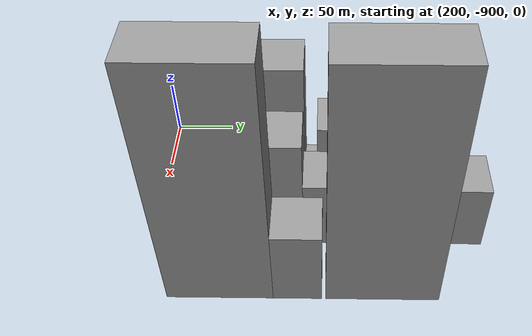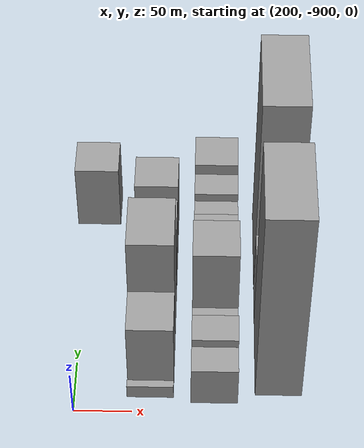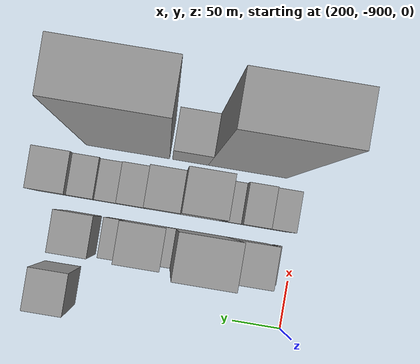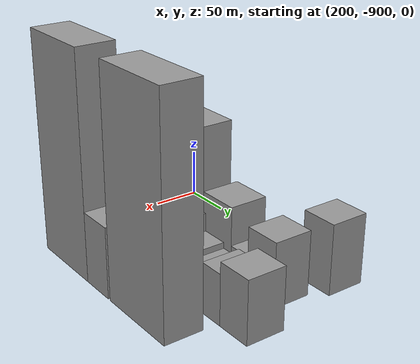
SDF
<sdf version="1.6">
 <world name="default">
  <model name="building_111">
   <static>1</static>
   <pose>210.0000 -667.3790 0 0.000000 0.000000 0.000000</pose>
   <link name="link">
    <pose>0 0 36.00 0 0 0</pose>
    <collision name="collision"><geometry><box><size>40.0000 37.5217 72.0000</size></box></geometry></collision>
    <visual name="visual">
     <cast_shadows>0</cast_shadows>
     <geometry><box><size>40.0000 37.5217 72.0000</size></box></geometry>
     <material>
      <script>
       <uri>model://grey_wall/materials/scripts</uri>
       <uri>model://grey_wall/materials/textures</uri>
       <name>vrc/grey_wall</name>
      </script>
     </material>
    </visual>
   </link>
  </model>
  <model name="building_155">
   <static>1</static>
   <pose>265.0000 -881.4780 0 0.000000 0.000000 0.000000</pose>
   <link name="link">
    <pose>0 0 7.50 0 0 0</pose>
    <collision name="collision"><geometry><box><size>40.0000 7.0440 15.0000</size></box></geometry></collision>
    <visual name="visual">
     <cast_shadows>0</cast_shadows>
     <geometry><box><size>40.0000 7.0440 15.0000</size></box></geometry>
     <material>
      <script>
       <uri>model://grey_wall/materials/scripts</uri>
       <uri>model://grey_wall/materials/textures</uri>
       <name>vrc/grey_wall</name>
      </script>
     </material>
    </visual>
   </link>
  </model>
  <model name="building_156">
   <static>1</static>
   <pose>265.0000 -850.2596 0 0.000000 0.000000 0.000000</pose>
   <link name="link">
    <pose>0 0 37.50 0 0 0</pose>
    <collision name="collision"><geometry><box><size>40.0000 41.3928 75.0000</size></box></geometry></collision>
    <visual name="visual">
     <cast_shadows>0</cast_shadows>
     <geometry><box><size>40.0000 41.3928 75.0000</size></box></geometry>
     <material>
      <script>
       <uri>model://grey_wall/materials/scripts</uri>
       <uri>model://grey_wall/materials/textures</uri>
       <name>vrc/grey_wall</name>
      </script>
     </material>
    </visual>
   </link>
  </model>
  <model name="building_157">
   <static>1</static>
   <pose>265.0000 -803.0641 0 0.000000 0.000000 0.000000</pose>
   <link name="link">
    <pose>0 0 67.50 0 0 0</pose>
    <collision name="collision"><geometry><box><size>40.0000 52.9983 135.0000</size></box></geometry></collision>
    <visual name="visual">
     <cast_shadows>0</cast_shadows>
     <geometry><box><size>40.0000 52.9983 135.0000</size></box></geometry>
     <material>
      <script>
       <uri>model://grey_wall/materials/scripts</uri>
       <uri>model://grey_wall/materials/textures</uri>
       <name>vrc/grey_wall</name>
      </script>
     </material>
    </visual>
   </link>
  </model>
  <model name="building_158">
   <static>1</static>
   <pose>265.0000 -771.4988 0 0.000000 0.000000 0.000000</pose>
   <link name="link">
    <pose>0 0 10.50 0 0 0</pose>
    <collision name="collision"><geometry><box><size>40.0000 10.1322 21.0000</size></box></geometry></collision>
    <visual name="visual">
     <cast_shadows>0</cast_shadows>
     <geometry><box><size>40.0000 10.1322 21.0000</size></box></geometry>
     <material>
      <script>
       <uri>model://grey_wall/materials/scripts</uri>
       <uri>model://grey_wall/materials/textures</uri>
       <name>vrc/grey_wall</name>
      </script>
     </material>
    </visual>
   </link>
  </model>
  <model name="building_159">
   <static>1</static>
   <pose>265.0000 -744.9496 0 0.000000 0.000000 0.000000</pose>
   <link name="link">
    <pose>0 0 37.50 0 0 0</pose>
    <collision name="collision"><geometry><box><size>40.0000 42.9663 75.0000</size></box></geometry></collision>
    <visual name="visual">
     <cast_shadows>0</cast_shadows>
     <geometry><box><size>40.0000 42.9663 75.0000</size></box></geometry>
     <material>
      <script>
       <uri>model://grey_wall/materials/scripts</uri>
       <uri>model://grey_wall/materials/textures</uri>
       <name>vrc/grey_wall</name>
      </script>
     </material>
    </visual>
   </link>
  </model>
  <model name="building_160">
   <static>1</static>
   <pose>265.0000 -714.1435 0 0.000000 0.000000 0.000000</pose>
   <link name="link">
    <pose>0 0 18.00 0 0 0</pose>
    <collision name="collision"><geometry><box><size>40.0000 18.6459 36.0000</size></box></geometry></collision>
    <visual name="visual">
     <cast_shadows>0</cast_shadows>
     <geometry><box><size>40.0000 18.6459 36.0000</size></box></geometry>
     <material>
      <script>
       <uri>model://grey_wall/materials/scripts</uri>
       <uri>model://grey_wall/materials/textures</uri>
       <name>vrc/grey_wall</name>
      </script>
     </material>
    </visual>
   </link>
  </model>
  <model name="building_161">
   <static>1</static>
   <pose>265.0000 -679.9780 0 0.000000 0.000000 0.000000</pose>
   <link name="link">
    <pose>0 0 33.00 0 0 0</pose>
    <collision name="collision"><geometry><box><size>40.0000 37.6849 66.0000</size></box></geometry></collision>
    <visual name="visual">
     <cast_shadows>0</cast_shadows>
     <geometry><box><size>40.0000 37.6849 66.0000</size></box></geometry>
     <material>
      <script>
       <uri>model://grey_wall/materials/scripts</uri>
       <uri>model://grey_wall/materials/textures</uri>
       <name>vrc/grey_wall</name>
      </script>
     </material>
    </visual>
   </link>
  </model>
  <model name="building_212">
   <static>1</static>
   <pose>320.0000 -877.1069 0 0.000000 0.000000 0.000000</pose>
   <link name="link">
    <pose>0 0 22.50 0 0 0</pose>
    <collision name="collision"><geometry><box><size>40.0000 25.7862 45.0000</size></box></geometry></collision>
    <visual name="visual">
     <cast_shadows>0</cast_shadows>
     <geometry><box><size>40.0000 25.7862 45.0000</size></box></geometry>
     <material>
      <script>
       <uri>model://grey_wall/materials/scripts</uri>
       <uri>model://grey_wall/materials/textures</uri>
       <name>vrc/grey_wall</name>
      </script>
     </material>
    </visual>
   </link>
  </model>
  <model name="building_213">
   <static>1</static>
   <pose>320.0000 -850.6673 0 0.000000 0.000000 0.000000</pose>
   <link name="link">
    <pose>0 0 27.00 0 0 0</pose>
    <collision name="collision"><geometry><box><size>40.0000 27.0930 54.0000</size></box></geometry></collision>
    <visual name="visual">
     <cast_shadows>0</cast_shadows>
     <geometry><box><size>40.0000 27.0930 54.0000</size></box></geometry>
     <material>
      <script>
       <uri>model://grey_wall/materials/scripts</uri>
       <uri>model://grey_wall/materials/textures</uri>
       <name>vrc/grey_wall</name>
      </script>
     </material>
    </visual>
   </link>
  </model>
  <model name="building_214">
   <static>1</static>
   <pose>320.0000 -827.1272 0 0.000000 0.000000 0.000000</pose>
   <link name="link">
    <pose>0 0 19.50 0 0 0</pose>
    <collision name="collision"><geometry><box><size>40.0000 19.9871 39.0000</size></box></geometry></collision>
    <visual name="visual">
     <cast_shadows>0</cast_shadows>
     <geometry><box><size>40.0000 19.9871 39.0000</size></box></geometry>
     <material>
      <script>
       <uri>model://grey_wall/materials/scripts</uri>
       <uri>model://grey_wall/materials/textures</uri>
       <name>vrc/grey_wall</name>
      </script>
     </material>
    </visual>
   </link>
  </model>
  <model name="building_215">
   <static>1</static>
   <pose>320.0000 -797.0201 0 0.000000 0.000000 0.000000</pose>
   <link name="link">
    <pose>0 0 54.00 0 0 0</pose>
    <collision name="collision"><geometry><box><size>40.0000 40.2270 108.0000</size></box></geometry></collision>
    <visual name="visual">
     <cast_shadows>0</cast_shadows>
     <geometry><box><size>40.0000 40.2270 108.0000</size></box></geometry>
     <material>
      <script>
       <uri>model://grey_wall/materials/scripts</uri>
       <uri>model://grey_wall/materials/textures</uri>
       <name>vrc/grey_wall</name>
      </script>
     </material>
    </visual>
   </link>
  </model>
  <model name="building_216">
   <static>1</static>
   <pose>320.0000 -759.6730 0 0.000000 0.000000 0.000000</pose>
   <link name="link">
    <pose>0 0 33.00 0 0 0</pose>
    <collision name="collision"><geometry><box><size>40.0000 34.4671 66.0000</size></box></geometry></collision>
    <visual name="visual">
     <cast_shadows>0</cast_shadows>
     <geometry><box><size>40.0000 34.4671 66.0000</size></box></geometry>
     <material>
      <script>
       <uri>model://grey_wall/materials/scripts</uri>
       <uri>model://grey_wall/materials/textures</uri>
       <name>vrc/grey_wall</name>
      </script>
     </material>
    </visual>
   </link>
  </model>
  <model name="building_217">
   <static>1</static>
   <pose>320.0000 -728.8357 0 0.000000 0.000000 0.000000</pose>
   <link name="link">
    <pose>0 0 24.00 0 0 0</pose>
    <collision name="collision"><geometry><box><size>40.0000 27.2076 48.0000</size></box></geometry></collision>
    <visual name="visual">
     <cast_shadows>0</cast_shadows>
     <geometry><box><size>40.0000 27.2076 48.0000</size></box></geometry>
     <material>
      <script>
       <uri>model://grey_wall/materials/scripts</uri>
       <uri>model://grey_wall/materials/textures</uri>
       <name>vrc/grey_wall</name>
      </script>
     </material>
    </visual>
   </link>
  </model>
  <model name="building_218">
   <static>1</static>
   <pose>320.0000 -704.3555 0 0.000000 0.000000 0.000000</pose>
   <link name="link">
    <pose>0 0 21.00 0 0 0</pose>
    <collision name="collision"><geometry><box><size>40.0000 21.7528 42.0000</size></box></geometry></collision>
    <visual name="visual">
     <cast_shadows>0</cast_shadows>
     <geometry><box><size>40.0000 21.7528 42.0000</size></box></geometry>
     <material>
      <script>
       <uri>model://grey_wall/materials/scripts</uri>
       <uri>model://grey_wall/materials/textures</uri>
       <name>vrc/grey_wall</name>
      </script>
     </material>
    </visual>
   </link>
  </model>
  <model name="building_219">
   <static>1</static>
   <pose>320.0000 -680.6403 0 0.000000 0.000000 0.000000</pose>
   <link name="link">
    <pose>0 0 25.50 0 0 0</pose>
    <collision name="collision"><geometry><box><size>40.0000 25.6777 51.0000</size></box></geometry></collision>
    <visual name="visual">
     <cast_shadows>0</cast_shadows>
     <geometry><box><size>40.0000 25.6777 51.0000</size></box></geometry>
     <material>
      <script>
       <uri>model://grey_wall/materials/scripts</uri>
       <uri>model://grey_wall/materials/textures</uri>
       <name>vrc/grey_wall</name>
      </script>
     </material>
    </visual>
   </link>
  </model>
  <model name="building_220">
   <static>1</static>
   <pose>320.0000 -649.3869 0 0.000000 0.000000 0.000000</pose>
   <link name="link">
    <pose>0 0 31.50 0 0 0</pose>
    <collision name="collision"><geometry><box><size>40.0000 36.8290 63.0000</size></box></geometry></collision>
    <visual name="visual">
     <cast_shadows>0</cast_shadows>
     <geometry><box><size>40.0000 36.8290 63.0000</size></box></geometry>
     <material>
      <script>
       <uri>model://grey_wall/materials/scripts</uri>
       <uri>model://grey_wall/materials/textures</uri>
       <name>vrc/grey_wall</name>
      </script>
     </material>
    </visual>
   </link>
  </model>
  <model name="building_264">
   <static>1</static>
   <pose>375.0000 -839.9129 0 0.000000 0.000000 0.000000</pose>
   <link name="link">
    <pose>0 0 112.50 0 0 0</pose>
    <collision name="collision"><geometry><box><size>40.0000 82.1743 225.0000</size></box></geometry></collision>
    <visual name="visual">
     <cast_shadows>0</cast_shadows>
     <geometry><box><size>40.0000 82.1743 225.0000</size></box></geometry>
     <material>
      <script>
       <uri>model://grey_wall/materials/scripts</uri>
       <uri>model://grey_wall/materials/textures</uri>
       <name>vrc/grey_wall</name>
      </script>
     </material>
    </visual>
   </link>
  </model>
  <model name="building_265">
   <static>1</static>
   <pose>375.0000 -780.1161 0 0.000000 0.000000 0.000000</pose>
   <link name="link">
    <pose>0 0 36.00 0 0 0</pose>
    <collision name="collision"><geometry><box><size>40.0000 37.4192 72.0000</size></box></geometry></collision>
    <visual name="visual">
     <cast_shadows>0</cast_shadows>
     <geometry><box><size>40.0000 37.4192 72.0000</size></box></geometry>
     <material>
      <script>
       <uri>model://grey_wall/materials/scripts</uri>
       <uri>model://grey_wall/materials/textures</uri>
       <name>vrc/grey_wall</name>
      </script>
     </material>
    </visual>
   </link>
  </model>
  <model name="building_266">
   <static>1</static>
   <pose>375.0000 -714.8426 0 0.000000 0.000000 0.000000</pose>
   <link name="link">
    <pose>0 0 112.50 0 0 0</pose>
    <collision name="collision"><geometry><box><size>40.0000 87.1279 225.0000</size></box></geometry></collision>
    <visual name="visual">
     <cast_shadows>0</cast_shadows>
     <geometry><box><size>40.0000 87.1279 225.0000</size></box></geometry>
     <material>
      <script>
       <uri>model://grey_wall/materials/scripts</uri>
       <uri>model://grey_wall/materials/textures</uri>
       <name>vrc/grey_wall</name>
      </script>
     </material>
    </visual>
   </link>
  </model>
 </world>
</sdf>
